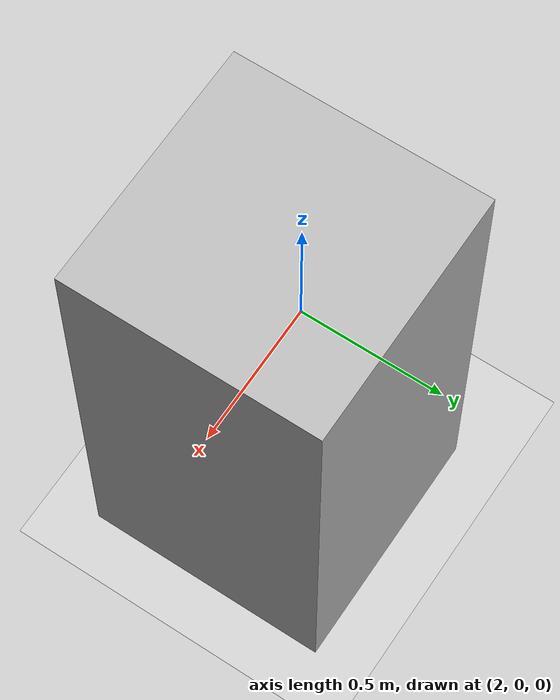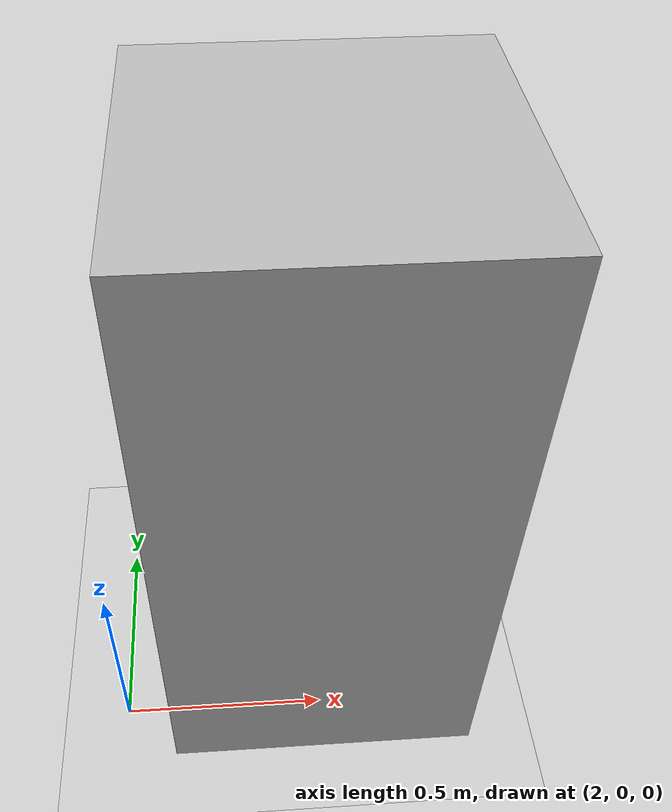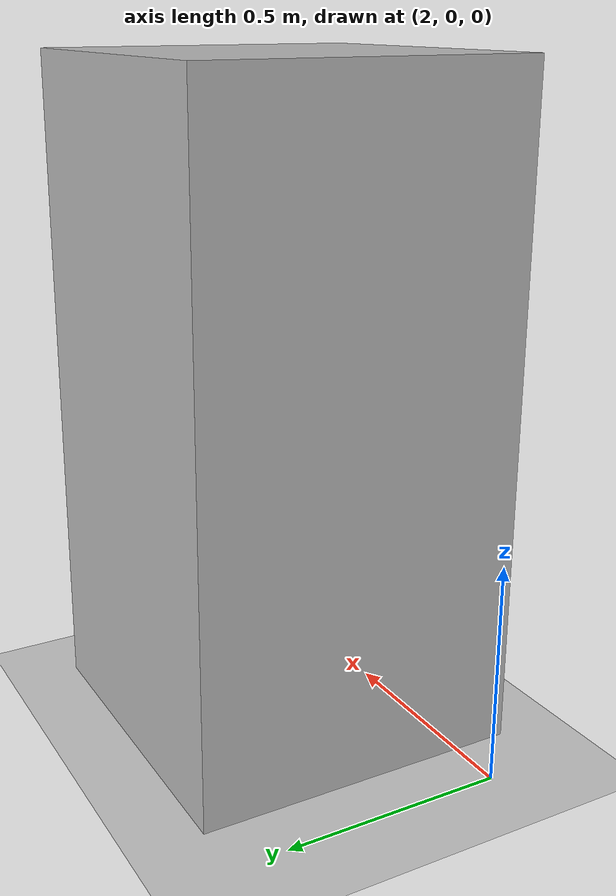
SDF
<?xml version="1.0" ?>
<sdf version="1.4">
  <world name="default">
    <include>
      <uri>model://ground_plane</uri>
    </include>
    <include>
      <uri>model://sun</uri>
    </include>

    <model name="obstacle">
      <static>true</static>
      <pose>2.5 0.25 0.75 0 0 0</pose>
      <link name="box">
        <collision name="collision">
          <geometry>
            <box>
              <size>0.75 0.75 1.5</size>
            </box>
          </geometry>
        </collision>
        <visual name="visual">
          <geometry>
            <box>
              <size>0.75 0.75 1.5</size>
            </box>
          </geometry>
        </visual>
      </link>
    </model>
  </world>
</sdf>
